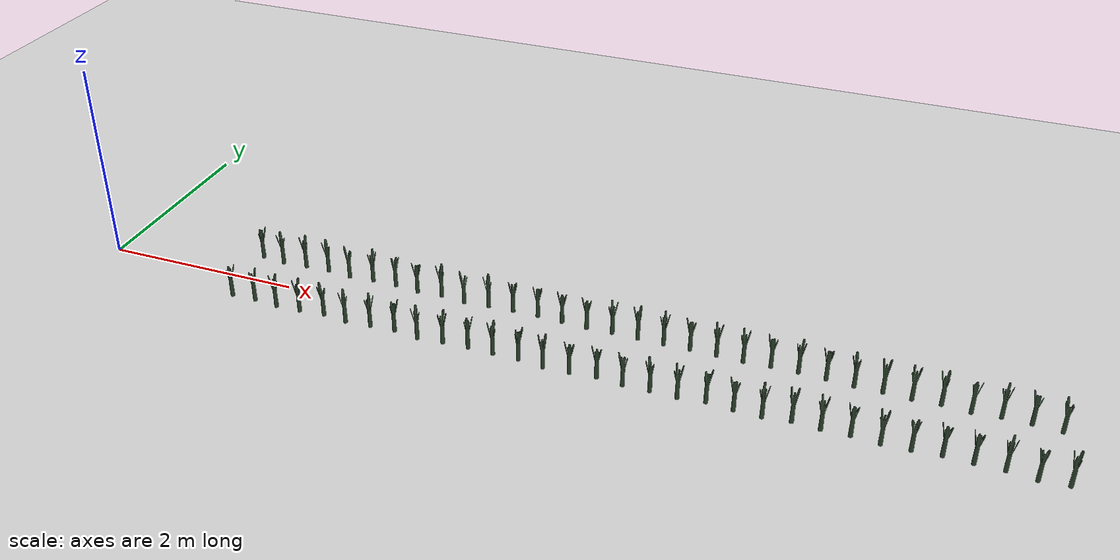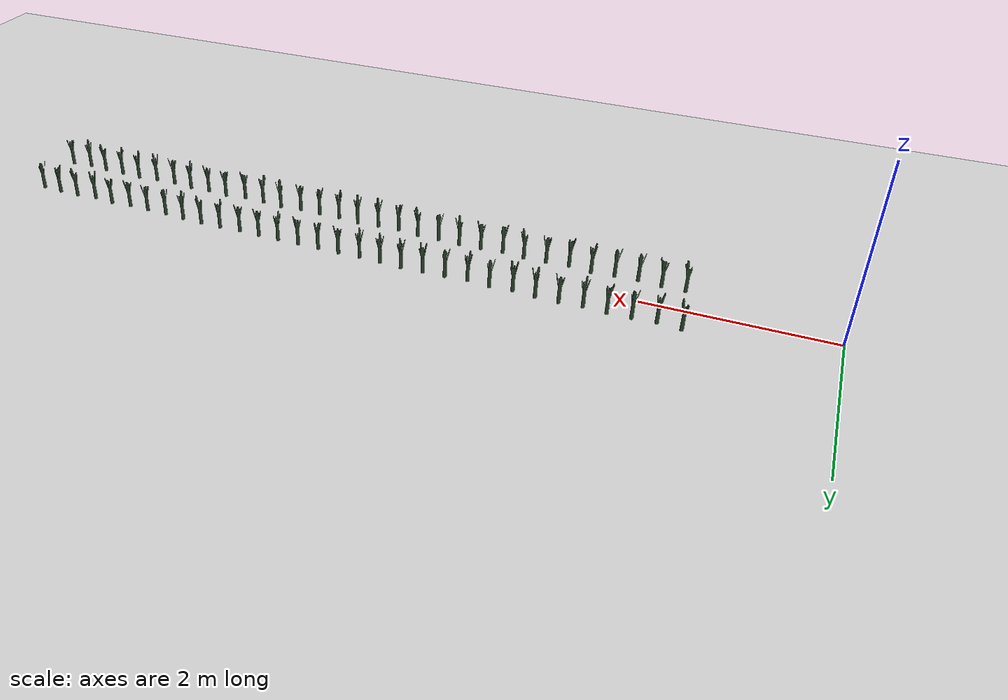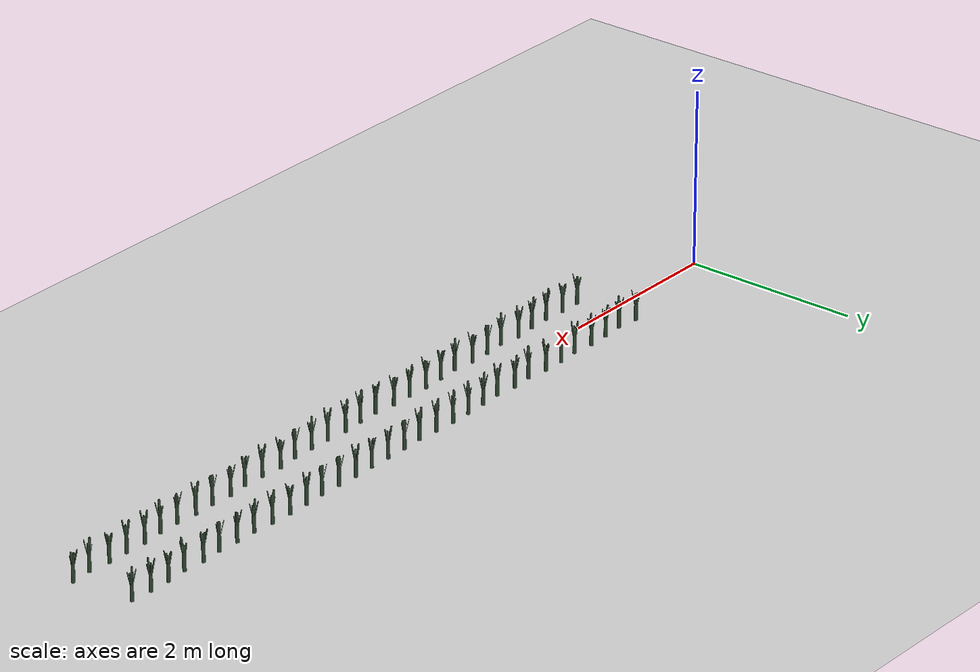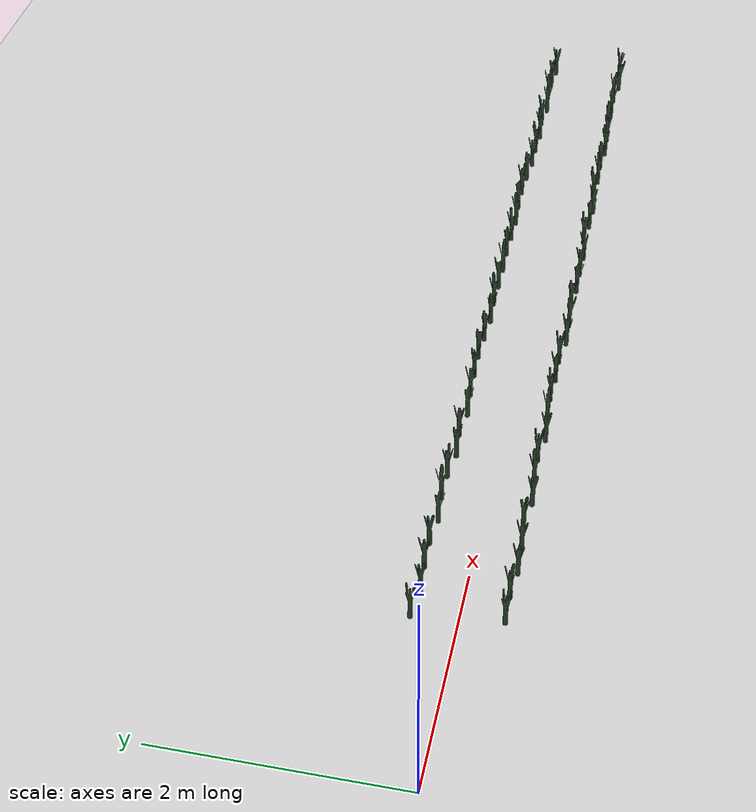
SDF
<sdf version="1.6">
 <world name="default">
  <light name="sun" type="directional">
   <pose>0 0 10 0 -0 0</pose>
   <diffuse>0.5 0.5 0.5 1</diffuse>
   <specular>0.1 0.1 0.1 1</specular>
   <attenuation>
    <range>1000</range>
    <constant>0.9</constant>
    <linear>0.01</linear>
    <quadratic>0.001</quadratic>
   </attenuation>
   <direction>0.9 0.5 -1</direction>
  </light>
  <scene><background>130 200 255 1</background><ambient>130 140 140 1</ambient></scene>
  <include><uri>model://sand_plane</uri></include>
  <include><uri>model://Leek</uri><pose>1.500000 0.368065 0.15 0 0 162.584509</pose><static>0</static></include>
  <include><uri>model://Leek</uri><pose>1.750000 0.339086 0.15 0 0 -98.227374</pose><static>0</static></include>
  <include><uri>model://Leek</uri><pose>2.000000 0.358572 0.15 0 0 77.150045</pose><static>0</static></include>
  <include><uri>model://Leek</uri><pose>2.250000 0.367705 0.15 0 0 159.342994</pose><static>0</static></include>
  <include><uri>model://Leek</uri><pose>2.500000 0.343349 0.15 0 0 -59.856262</pose><static>0</static></include>
  <include><uri>model://Leek</uri><pose>2.750000 0.366077 0.15 0 0 144.691417</pose><static>0</static></include>
  <include><uri>model://Leek</uri><pose>3.000000 0.365865 0.15 0 0 142.781439</pose><static>0</static></include>
  <include>
   <uri>model://Leek</uri>
   <pose>3.250000 0.336468 0.15 0 0 -121.786115</pose>
   <static>0</static>
  </include>
  <include><uri>model://Leek</uri><pose>3.500000 0.359274 0.15 0 0 83.464521</pose><static>0</static></include>
  <include>
   <uri>model://Leek</uri>
   <pose>3.750000 0.332177 0.15 0 0 -160.408443</pose>
   <static>0</static>
  </include>
  <include><uri>model://Leek</uri><pose>4.000000 0.351612 0.15 0 0 14.509063</pose><static>0</static></include>
  <include><uri>model://Leek</uri><pose>4.250000 0.362306 0.15 0 0 110.750588</pose><static>0</static></include>
  <include><uri>model://Leek</uri><pose>4.500000 0.368557 0.15 0 0 167.015939</pose><static>0</static></include>
  <include><uri>model://Leek</uri><pose>4.750000 0.358761 0.15 0 0 78.846958</pose><static>0</static></include>
  <include><uri>model://Leek</uri><pose>5.000000 0.344790 0.15 0 0 -46.887503</pose><static>0</static></include>
  <include><uri>model://Leek</uri><pose>5.250000 0.357025 0.15 0 0 63.226677</pose><static>0</static></include>
  <include><uri>model://Leek</uri><pose>5.500000 0.354342 0.15 0 0 39.075073</pose><static>0</static></include>
  <include><uri>model://Leek</uri><pose>5.750000 0.353497 0.15 0 0 31.477042</pose><static>0</static></include>
  <include><uri>model://Leek</uri><pose>6.000000 0.360122 0.15 0 0 91.099336</pose><static>0</static></include>
  <include><uri>model://Leek</uri><pose>6.250000 0.354935 0.15 0 0 44.418989</pose><static>0</static></include>
  <include><uri>model://Leek</uri><pose>6.500000 0.348651 0.15 0 0 -12.136769</pose><static>0</static></include>
  <include><uri>model://Leek</uri><pose>6.750000 0.366390 0.15 0 0 147.513026</pose><static>0</static></include>
  <include><uri>model://Leek</uri><pose>7.000000 0.368118 0.15 0 0 163.061491</pose><static>0</static></include>
  <include><uri>model://Leek</uri><pose>7.250000 0.358063 0.15 0 0 72.567763</pose><static>0</static></include>
  <include><uri>model://Leek</uri><pose>7.500000 0.340447 0.15 0 0 -85.979793</pose><static>0</static></include>
  <include><uri>model://Leek</uri><pose>7.750000 0.342411 0.15 0 0 -68.304996</pose><static>0</static></include>
  <include>
   <uri>model://Leek</uri>
   <pose>8.000000 0.334696 0.15 0 0 -137.737096</pose>
   <static>0</static>
  </include>
  <include><uri>model://Leek</uri><pose>8.250000 0.352922 0.15 0 0 26.297596</pose><static>0</static></include>
  <include>
   <uri>model://Leek</uri>
   <pose>8.500000 0.331649 0.15 0 0 -165.155687</pose>
   <static>0</static>
  </include>
  <include><uri>model://Leek</uri><pose>8.750000 0.354860 0.15 0 0 43.741594</pose><static>0</static></include>
  <include><uri>model://Leek</uri><pose>9.000000 0.354490 0.15 0 0 40.414486</pose><static>0</static></include>
  <include>
   <uri>model://Leek</uri>
   <pose>9.250000 0.338370 0.15 0 0 -104.673102</pose>
   <static>0</static>
  </include>
  <include><uri>model://Leek</uri><pose>1.580344 -0.347311 0.15 0 0 24.199571</pose><static>0</static></include>
  <include><uri>model://Leek</uri><pose>1.830344 -0.341650 0.15 0 0 75.146209</pose><static>0</static></include>
  <include>
   <uri>model://Leek</uri>
   <pose>2.080344 -0.364477 0.15 0 0 -130.290481</pose>
   <static>0</static>
  </include>
  <include>
   <uri>model://Leek</uri>
   <pose>2.330344 -0.354690 0.15 0 0 -42.212391</pose>
   <static>0</static>
  </include>
  <include>
   <uri>model://Leek</uri>
   <pose>2.580344 -0.330165 0.15 0 0 178.515209</pose>
   <static>0</static>
  </include>
  <include>
   <uri>model://Leek</uri>
   <pose>2.830344 -0.363725 0.15 0 0 -123.523282</pose>
   <static>0</static>
  </include>
  <include><uri>model://Leek</uri><pose>3.080344 -0.340884 0.15 0 0 82.043657</pose><static>0</static></include>
  <include>
   <uri>model://Leek</uri>
   <pose>3.330344 -0.332636 0.15 0 0 156.275179</pose>
   <static>0</static>
  </include>
  <include>
   <uri>model://Leek</uri>
   <pose>3.580344 -0.364432 0.15 0 0 -129.883742</pose>
   <static>0</static>
  </include>
  <include><uri>model://Leek</uri><pose>3.830344 -0.342318 0.15 0 0 69.134395</pose><static>0</static></include>
  <include>
   <uri>model://Leek</uri>
   <pose>4.080344 -0.331975 0.15 0 0 162.227191</pose>
   <static>0</static>
  </include>
  <include><uri>model://Leek</uri><pose>4.330344 -0.340745 0.15 0 0 83.292551</pose><static>0</static></include>
  <include>
   <uri>model://Leek</uri>
   <pose>4.580344 -0.338213 0.15 0 0 106.079090</pose>
   <static>0</static>
  </include>
  <include>
   <uri>model://Leek</uri>
   <pose>4.830344 -0.369403 0.15 0 0 -174.627393</pose>
   <static>0</static>
  </include>
  <include>
   <uri>model://Leek</uri>
   <pose>5.080344 -0.360079 0.15 0 0 -90.715107</pose>
   <static>0</static>
  </include>
  <include><uri>model://Leek</uri><pose>5.330344 -0.340542 0.15 0 0 85.119024</pose><static>0</static></include>
  <include>
   <uri>model://Leek</uri>
   <pose>5.580344 -0.362930 0.15 0 0 -116.366260</pose>
   <static>0</static>
  </include>
  <include>
   <uri>model://Leek</uri>
   <pose>5.830344 -0.359533 0.15 0 0 -85.794887</pose>
   <static>0</static>
  </include>
  <include>
   <uri>model://Leek</uri>
   <pose>6.080344 -0.364600 0.15 0 0 -131.403898</pose>
   <static>0</static>
  </include>
  <include>
   <uri>model://Leek</uri>
   <pose>6.330344 -0.334060 0.15 0 0 143.460613</pose>
   <static>0</static>
  </include>
  <include>
   <uri>model://Leek</uri>
   <pose>6.580344 -0.356642 0.15 0 0 -59.780290</pose>
   <static>0</static>
  </include>
  <include>
   <uri>model://Leek</uri>
   <pose>6.830344 -0.364645 0.15 0 0 -131.801675</pose>
   <static>0</static>
  </include>
  <include>
   <uri>model://Leek</uri>
   <pose>7.080344 -0.331764 0.15 0 0 164.124850</pose>
   <static>0</static>
  </include>
  <include><uri>model://Leek</uri><pose>7.330344 -0.348556 0.15 0 0 12.996175</pose><static>0</static></include>
  <include><uri>model://Leek</uri><pose>7.580344 -0.340563 0.15 0 0 84.932761</pose><static>0</static></include>
  <include>
   <uri>model://Leek</uri>
   <pose>7.830344 -0.361096 0.15 0 0 -99.860721</pose>
   <static>0</static>
  </include>
  <include>
   <uri>model://Leek</uri>
   <pose>8.080344 -0.352344 0.15 0 0 -21.096355</pose>
   <static>0</static>
  </include>
  <include>
   <uri>model://Leek</uri>
   <pose>8.330344 -0.330099 0.15 0 0 179.113417</pose>
   <static>0</static>
  </include>
  <include>
   <uri>model://Leek</uri>
   <pose>8.580344 -0.337776 0.15 0 0 110.011583</pose>
   <static>0</static>
  </include>
  <include>
   <uri>model://Leek</uri>
   <pose>8.830344 -0.333971 0.15 0 0 144.262581</pose>
   <static>0</static>
  </include>
  <include>
   <uri>model://Leek</uri>
   <pose>9.080344 -0.363555 0.15 0 0 -121.997127</pose>
   <static>0</static>
  </include>
  <include><uri>model://Leek</uri><pose>9.330344 -0.341506 0.15 0 0 76.443003</pose><static>0</static></include>
 </world>
</sdf>

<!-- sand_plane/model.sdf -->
<sdf version="1.4">
<model name="sand_plane">
  <static>true</static>
    <link name="link">
      <collision name="collision">
        <geometry>
          <plane>
            <normal>0 0 1</normal>
            <size>100 100</size>
          </plane>
        </geometry>
        <surface>
          <friction>
            <ode>
              <mu>0.99</mu>
              <mu2>0.99</mu2>
            </ode>
          </friction>
        </surface>
      </collision>
      <visual name="visual">
        <cast_shadows>false</cast_shadows>
        <geometry>
          <plane>
            <normal>0 0 1</normal>
            <size>100 100</size>
          </plane>
        </geometry>
        <material>
          <script>
            <uri>model://ground_plane/materials/scripts/my_ground_plane.material</uri>
            <uri>model://ground_plane/materials/textures</uri>
            <name>my_ground_plane/Sand</name>
          </script>
        </material>
      </visual>
    </link>
  </model>
</sdf>

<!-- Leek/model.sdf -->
<sdf version='1.6'>
  <model name='Leek'>
    <link name='link'>
      <pose frame=''>0 0 0 0 -0 0</pose>
      <inertial>
        <mass>1</mass>
        <inertia>
          <ixx>0.145833</ixx>
          <ixy>0</ixy>
          <ixz>0</ixz>
          <iyy>0.145833</iyy>
          <iyz>0</iyz>
          <izz>0.125</izz>
        </inertia>
        <pose frame=''>0 0 0 0 -0 0</pose>
      </inertial>
      <self_collide>0</self_collide>
      <kinematic>0</kinematic>
      <gravity>1</gravity>
      <visual name='visual'>
        <geometry>
          <mesh>
            <uri>model://Leek/Poireau.dae</uri>
            <scale>1 1 1</scale>
          </mesh>
        </geometry>
        <material>
          <script>
            <name>Gazebo/Grey</name>
            <uri>file://media/materials/scripts/gazebo.material</uri>
          </script>
          <ambient>0.3 0.7 0.4 0</ambient>
          <diffuse>0.2 0.3 0.2 0</diffuse>
          <specular>0 0 0 1</specular>
          <emissive>0 0 0 1</emissive>
          <shader type='vertex'>
            <normal_map>__default__</normal_map>
          </shader>
        </material>
        <pose frame=''>0 0 -0.08 0 -0 0</pose>
        <cast_shadows>1</cast_shadows>
        <transparency>0</transparency>
      </visual>
      <collision name='collision'>
        <laser_retro>0</laser_retro>
        <max_contacts>10</max_contacts>
        <pose frame=''>0 0 0 0 -0 0</pose>
        <geometry>
          <cylinder>
            <radius>0.02</radius>
            <length>0.25</length>
          </cylinder>
        </geometry>
        <surface>
          <friction>
            <ode>
              <mu>1</mu>
              <mu2>1</mu2>
              <fdir1>0 0 0</fdir1>
              <slip1>0</slip1>
              <slip2>0</slip2>
            </ode>
            <torsional>
              <coefficient>1</coefficient>
              <patch_radius>0</patch_radius>
              <surface_radius>0</surface_radius>
              <use_patch_radius>1</use_patch_radius>
              <ode>
                <slip>0</slip>
              </ode>
            </torsional>
          </friction>
          <bounce>
            <restitution_coefficient>0</restitution_coefficient>
            <threshold>1e+06</threshold>
          </bounce>
          <contact>
            <collide_without_contact>0</collide_without_contact>
            <collide_without_contact_bitmask>1</collide_without_contact_bitmask>
            <collide_bitmask>1</collide_bitmask>
            <ode>
              <soft_cfm>0</soft_cfm>
              <soft_erp>0.2</soft_erp>
              <kp>1e+13</kp>
              <kd>1</kd>
              <max_vel>0.01</max_vel>
              <min_depth>0</min_depth>
            </ode>
            <bullet>
              <split_impulse>1</split_impulse>
              <split_impulse_penetration_threshold>-0.01</split_impulse_penetration_threshold>
              <soft_cfm>0</soft_cfm>
              <soft_erp>0.2</soft_erp>
              <kp>1e+13</kp>
              <kd>1</kd>
            </bullet>
          </contact>
        </surface>
      </collision>
    </link>
    <static>0</static>
    <allow_auto_disable>1</allow_auto_disable>
  </model>
</sdf>
